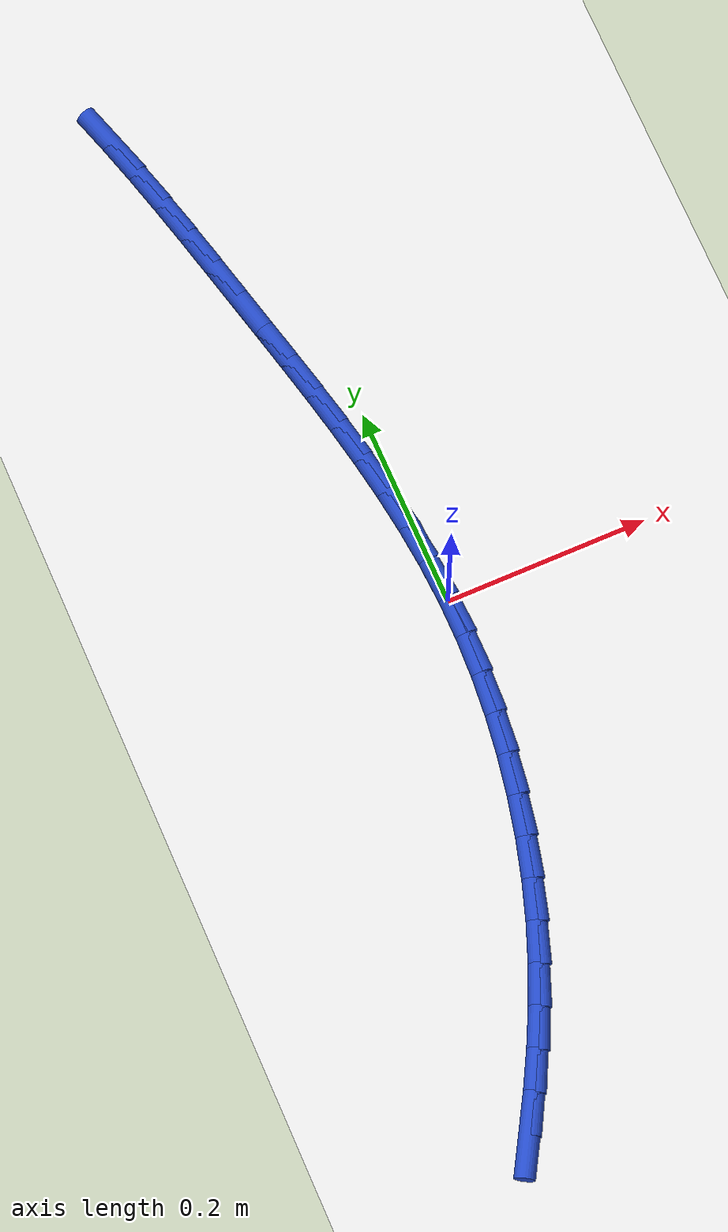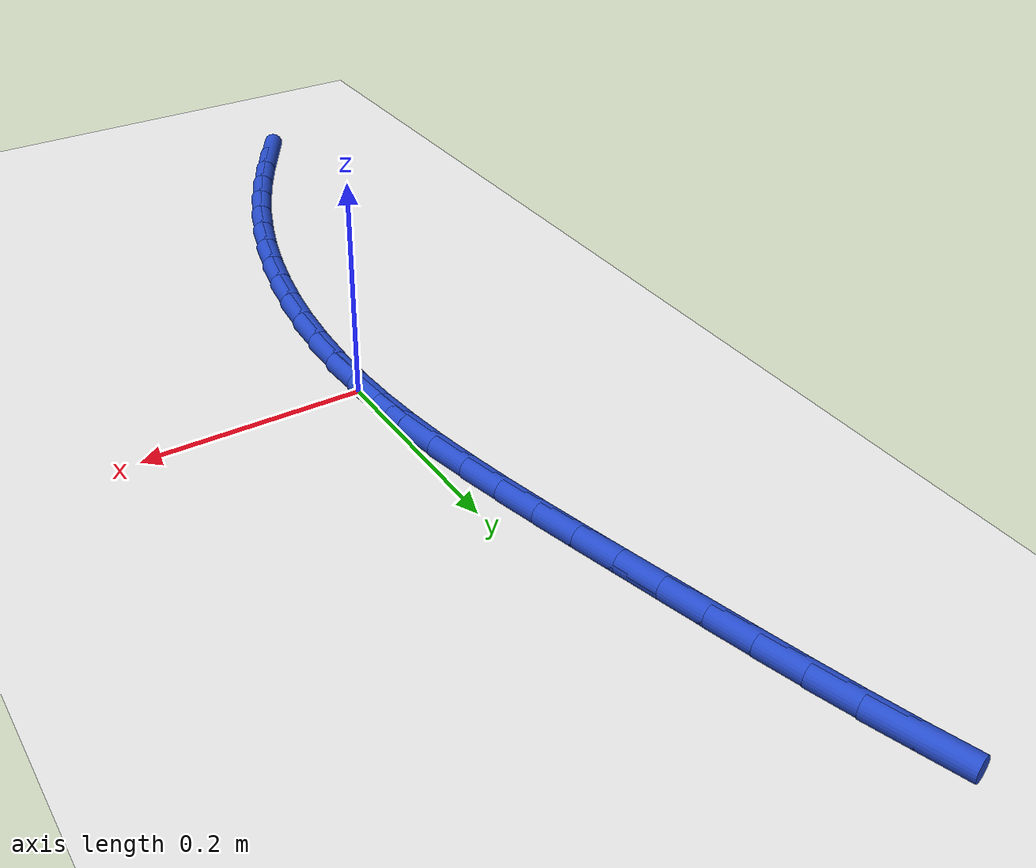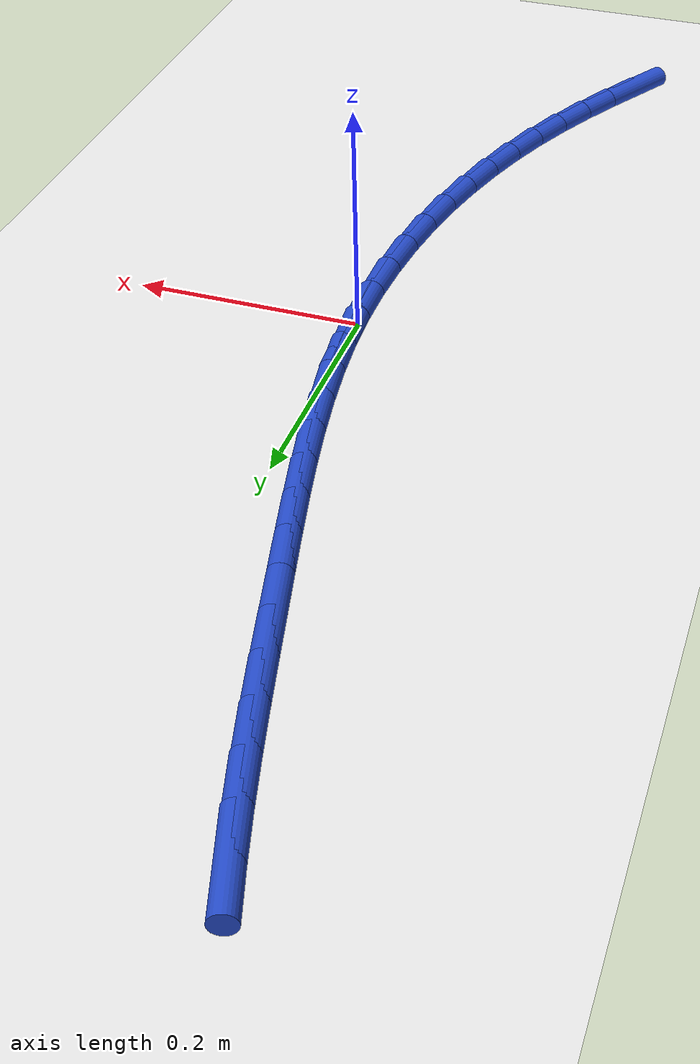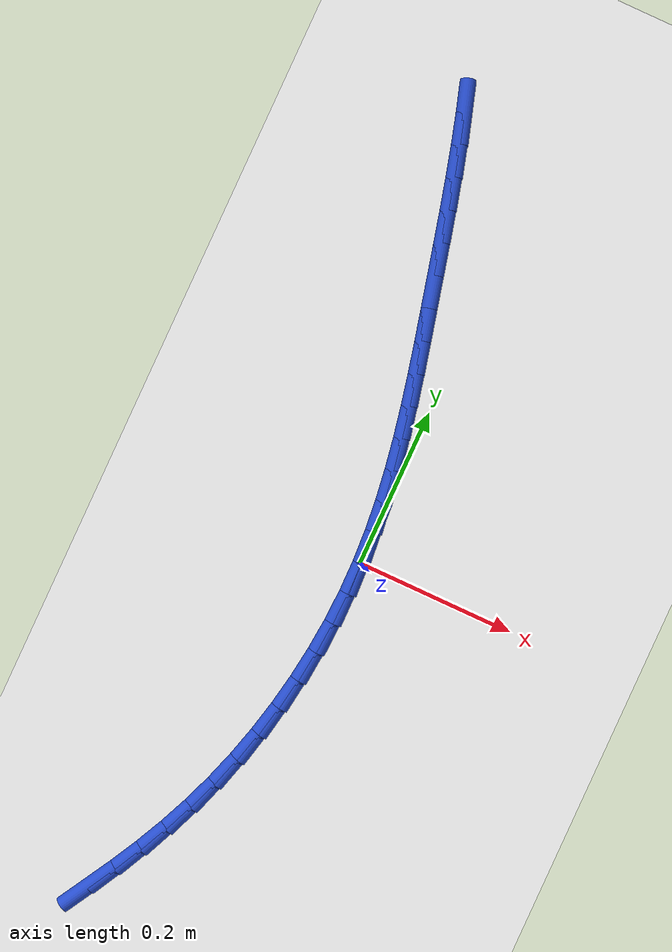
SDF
<sdf version="1.6">
 <world name="default">
  <model name="ground_plane">
   <static>1</static>
   <link name="link">
    <collision name="collision">
     <geometry><plane><normal>0 0 1</normal><size>100 100</size></plane></geometry>
     <surface><friction><ode><mu>100</mu><mu2>50</mu2></ode></friction></surface>
    </collision>
    <visual name="visual">
     <cast_shadows>0</cast_shadows>
     <geometry><plane><normal>0 0 1</normal><size>100 100</size></plane></geometry>
     <material>
      <script><uri>file://media/materials/scripts/gazebo.material</uri><name>Gazebo/WhiteGlow</name></script>
     </material>
    </visual>
   </link>
  </model>
  <model name="line">
   <link name="link_0">
    <pose>-1.734723475976807e-17 4.85722573273506e-17 0.01 0 1.57 -1.515405610957278</pose>
    <collision name="collision">
     <geometry><cylinder><radius>0.01</radius><length>0.08</length></cylinder></geometry>
    </collision>
    <visual name="visual">
     <material>
      <script><name>Gazebo/Blue</name><uri>file://media/materials/scripts/gazebo.material</uri></script>
     </material>
     <geometry><cylinder><radius>0.01</radius><length>0.08</length></cylinder></geometry>
    </visual>
   </link>
   <link name="link_1">
    <pose>-0.0021986254997409475 0.039652429999444225 0.01 0 1.57 -1.4713430195479442</pose>
    <collision name="collision">
     <geometry><cylinder><radius>0.01</radius><length>0.08</length></cylinder></geometry>
    </collision>
    <visual name="visual">
     <material>
      <script><name>Gazebo/Blue</name><uri>file://media/materials/scripts/gazebo.material</uri></script>
     </material>
     <geometry><cylinder><radius>0.01</radius><length>0.08</length></cylinder></geometry>
    </visual>
   </link>
   <link name="link_2">
    <pose>-0.006132129484228086 0.07907320767697612 0.01 0 1.57 -1.433098512157439</pose>
    <collision name="collision">
     <geometry><cylinder><radius>0.01</radius><length>0.08</length></cylinder></geometry>
    </collision>
    <visual name="visual">
     <material>
      <script><name>Gazebo/Blue</name><uri>file://media/materials/scripts/gazebo.material</uri></script>
     </material>
     <geometry><cylinder><radius>0.01</radius><length>0.08</length></cylinder></geometry>
    </visual>
   </link>
   <link name="link_3">
    <pose>-0.011568378197984274 0.11830292878780539 0.01 0 1.57 -1.40083018038586</pose>
    <collision name="collision">
     <geometry><cylinder><radius>0.01</radius><length>0.08</length></cylinder></geometry>
    </collision>
    <visual name="visual">
     <material>
      <script><name>Gazebo/Blue</name><uri>file://media/materials/scripts/gazebo.material</uri></script>
     </material>
     <geometry><cylinder><radius>0.01</radius><length>0.08</length></cylinder></geometry>
    </visual>
   </link>
   <link name="link_4">
    <pose>-0.018275237885532362 0.15738218908714177 0.01 0 1.57 -1.3745987916572162</pose>
    <collision name="collision">
     <geometry><cylinder><radius>0.01</radius><length>0.08</length></cylinder></geometry>
    </collision>
    <visual name="visual">
     <material>
      <script><name>Gazebo/Blue</name><uri>file://media/materials/scripts/gazebo.material</uri></script>
     </material>
     <geometry><cylinder><radius>0.01</radius><length>0.08</length></cylinder></geometry>
    </visual>
   </link>
   <link name="link_5">
    <pose>-0.026020574791395194 0.19635158433019478 0.01 0 1.57 -1.3544016644304093</pose>
    <collision name="collision">
     <geometry><cylinder><radius>0.01</radius><length>0.08</length></cylinder></geometry>
    </collision>
    <visual name="visual">
     <material>
      <script><name>Gazebo/Blue</name><uri>file://media/materials/scripts/gazebo.material</uri></script>
     </material>
     <geometry><cylinder><radius>0.01</radius><length>0.08</length></cylinder></geometry>
    </visual>
   </link>
   <link name="link_6">
    <pose>-0.0345722551600956 0.2352517102721742 0.01 0 1.57 -1.3402013848472585</pose>
    <collision name="collision">
     <geometry><cylinder><radius>0.01</radius><length>0.08</length></cylinder></geometry>
    </collision>
    <visual name="visual">
     <material>
      <script><name>Gazebo/Blue</name><uri>file://media/materials/scripts/gazebo.material</uri></script>
     </material>
     <geometry><cylinder><radius>0.01</radius><length>0.08</length></cylinder></geometry>
    </visual>
   </link>
   <link name="link_7">
    <pose>-0.043698145236156435 0.2741231626682896 0.01 0 1.57 -1.3319478990949911</pose>
    <collision name="collision">
     <geometry><cylinder><radius>0.01</radius><length>0.08</length></cylinder></geometry>
    </collision>
    <visual name="visual">
     <material>
      <script><name>Gazebo/Blue</name><uri>file://media/materials/scripts/gazebo.material</uri></script>
     </material>
     <geometry><cylinder><radius>0.01</radius><length>0.08</length></cylinder></geometry>
    </visual>
   </link>
   <link name="link_8">
    <pose>-0.05316611126410055 0.3130065372737507 0.01 0 1.57 -1.3295651523588803</pose>
    <collision name="collision">
     <geometry><cylinder><radius>0.01</radius><length>0.08</length></cylinder></geometry>
    </collision>
    <visual name="visual">
     <material>
      <script><name>Gazebo/Blue</name><uri>file://media/materials/scripts/gazebo.material</uri></script>
     </material>
     <geometry><cylinder><radius>0.01</radius><length>0.08</length></cylinder></geometry>
    </visual>
   </link>
   <link name="link_9">
    <pose>-0.06274511677212218 0.35194210177137425 0.01 0 1.57 -1.3297239635796314</pose>
    <collision name="collision">
     <geometry><cylinder><radius>0.01</radius><length>0.08</length></cylinder></geometry>
    </collision>
    <visual name="visual">
     <material>
      <script><name>Gazebo/Blue</name><uri>file://media/materials/scripts/gazebo.material</uri></script>
     </material>
     <geometry><cylinder><radius>0.01</radius><length>0.08</length></cylinder></geometry>
    </visual>
   </link>
   <link name="link_10">
    <pose>-0.07233097181801215 0.3909321985147546 0.01 0 1.57 -1.3261030435640409</pose>
    <collision name="collision">
     <geometry><cylinder><radius>0.01</radius><length>0.08</length></cylinder></geometry>
    </collision>
    <visual name="visual">
     <material>
      <script><name>Gazebo/Blue</name><uri>file://media/materials/scripts/gazebo.material</uri></script>
     </material>
     <geometry><cylinder><radius>0.01</radius><length>0.08</length></cylinder></geometry>
    </visual>
   </link>
   <link name="link_11">
    <pose>-0.08206271722990452 0.4299064472763352 0.01 0 1.57 -1.317984143536847</pose>
    <collision name="collision">
     <geometry><cylinder><radius>0.01</radius><length>0.08</length></cylinder></geometry>
    </collision>
    <visual name="visual">
     <material>
      <script><name>Gazebo/Blue</name><uri>file://media/materials/scripts/gazebo.material</uri></script>
     </material>
     <geometry><cylinder><radius>0.01</radius><length>0.08</length></cylinder></geometry>
    </visual>
   </link>
   <link name="link_12">
    <pose>-0.09210690837803741 0.4687862413672521 0.01 0 1.57 -1.305342546793271</pose>
    <collision name="collision">
     <geometry><cylinder><radius>0.01</radius><length>0.08</length></cylinder></geometry>
    </collision>
    <visual name="visual">
     <material>
      <script><name>Gazebo/Blue</name><uri>file://media/materials/scripts/gazebo.material</uri></script>
     </material>
     <geometry><cylinder><radius>0.01</radius><length>0.08</length></cylinder></geometry>
    </visual>
   </link>
   <link name="link_13">
    <pose>-0.10263010063264895 0.5074929740986415 0.01 0 1.57 -1.2881364495051462</pose>
    <collision name="collision">
     <geometry><cylinder><radius>0.01</radius><length>0.08</length></cylinder></geometry>
    </collision>
    <visual name="visual">
     <material>
      <script><name>Gazebo/Blue</name><uri>file://media/materials/scripts/gazebo.material</uri></script>
     </material>
     <geometry><cylinder><radius>0.01</radius><length>0.08</length></cylinder></geometry>
    </visual>
   </link>
   <link name="link_14">
    <pose>-0.1137988493639773 0.5459480387816392 0.01 0 1.57 -1.2663144781094937</pose>
    <collision name="collision">
     <geometry><cylinder><radius>0.01</radius><length>0.08</length></cylinder></geometry>
    </collision>
    <visual name="visual">
     <material>
      <script><name>Gazebo/Blue</name><uri>file://media/materials/scripts/gazebo.material</uri></script>
     </material>
     <geometry><cylinder><radius>0.01</radius><length>0.08</length></cylinder></geometry>
    </visual>
   </link>
   <link name="link_167">
    <pose>-0.13540257906196318 -0.490750331751239 0.01 0 1.57 1.0457390463107645</pose>
    <collision name="collision">
     <geometry><cylinder><radius>0.01</radius><length>0.08</length></cylinder></geometry>
    </collision>
    <visual name="visual">
     <material>
      <script><name>Gazebo/Blue</name><uri>file://media/materials/scripts/gazebo.material</uri></script>
     </material>
     <geometry><cylinder><radius>0.01</radius><length>0.08</length></cylinder></geometry>
    </visual>
   </link>
   <link name="link_168">
    <pose>-0.11568981253103953 -0.45672153351503425 0.01 0 1.57 1.0768004751168037</pose>
    <collision name="collision">
     <geometry><cylinder><radius>0.01</radius><length>0.08</length></cylinder></geometry>
    </collision>
    <visual name="visual">
     <material>
      <script><name>Gazebo/Blue</name><uri>file://media/materials/scripts/gazebo.material</uri></script>
     </material>
     <geometry><cylinder><radius>0.01</radius><length>0.08</length></cylinder></geometry>
    </visual>
   </link>
   <link name="link_169">
    <pose>-0.09712748638029682 -0.4222531410090164 0.01 0 1.57 1.1136666377398898</pose>
    <collision name="collision">
     <geometry><cylinder><radius>0.01</radius><length>0.08</length></cylinder></geometry>
    </collision>
    <visual name="visual">
     <material>
      <script><name>Gazebo/Blue</name><uri>file://media/materials/scripts/gazebo.material</uri></script>
     </material>
     <geometry><cylinder><radius>0.01</radius><length>0.08</length></cylinder></geometry>
    </visual>
   </link>
   <link name="link_170">
    <pose>-0.07987134824319025 -0.38717105812318087 0.01 0 1.57 1.156021816832876</pose>
    <collision name="collision">
     <geometry><cylinder><radius>0.01</radius><length>0.08</length></cylinder></geometry>
    </collision>
    <visual name="visual">
     <material>
      <script><name>Gazebo/Blue</name><uri>file://media/materials/scripts/gazebo.material</uri></script>
     </material>
     <geometry><cylinder><radius>0.01</radius><length>0.08</length></cylinder></geometry>
    </visual>
   </link>
   <link name="link_171">
    <pose>-0.06407714575317615 -0.3513011887475252 0.01 0 1.57 1.2029773549209302</pose>
    <collision name="collision">
     <geometry><cylinder><radius>0.01</radius><length>0.08</length></cylinder></geometry>
    </collision>
    <visual name="visual">
     <material>
      <script><name>Gazebo/Blue</name><uri>file://media/materials/scripts/gazebo.material</uri></script>
     </material>
     <geometry><cylinder><radius>0.01</radius><length>0.08</length></cylinder></geometry>
    </visual>
   </link>
   <link name="link_172">
    <pose>-0.04989232169963704 -0.3144915403809179 0.01 0 1.57 1.2506519487384984</pose>
    <collision name="collision">
     <geometry><cylinder><radius>0.01</radius><length>0.08</length></cylinder></geometry>
    </collision>
    <visual name="visual">
     <material>
      <script><name>Gazebo/Blue</name><uri>file://media/materials/scripts/gazebo.material</uri></script>
     </material>
     <geometry><cylinder><radius>0.01</radius><length>0.08</length></cylinder></geometry>
    </visual>
   </link>
   <link name="link_173">
    <pose>-0.037390903380840605 -0.2767855182065956 0.01 0 1.57 1.297443162978455</pose>
    <collision name="collision">
     <geometry><cylinder><radius>0.01</radius><length>0.08</length></cylinder></geometry>
    </collision>
    <visual name="visual">
     <material>
      <script><name>Gazebo/Blue</name><uri>file://media/materials/scripts/gazebo.material</uri></script>
     </material>
     <geometry><cylinder><radius>0.01</radius><length>0.08</length></cylinder></geometry>
    </visual>
   </link>
   <link name="link_174">
    <pose>-0.02660863140849155 -0.2383284286521076 0.01 0 1.57 1.343671422675699</pose>
    <collision name="collision">
     <geometry><cylinder><radius>0.01</radius><length>0.08</length></cylinder></geometry>
    </collision>
    <visual name="visual">
     <material>
      <script><name>Gazebo/Blue</name><uri>file://media/materials/scripts/gazebo.material</uri></script>
     </material>
     <geometry><cylinder><radius>0.01</radius><length>0.08</length></cylinder></geometry>
    </visual>
   </link>
   <link name="link_175">
    <pose>-0.017580915195986434 -0.1992664596399235 0.01 0 1.57 1.3896651411430871</pose>
    <collision name="collision">
     <geometry><cylinder><radius>0.01</radius><length>0.08</length></cylinder></geometry>
    </collision>
    <visual name="visual">
     <material>
      <script><name>Gazebo/Blue</name><uri>file://media/materials/scripts/gazebo.material</uri></script>
     </material>
     <geometry><cylinder><radius>0.01</radius><length>0.08</length></cylinder></geometry>
    </visual>
   </link>
   <link name="link_176">
    <pose>-0.010343164156721712 -0.15974579909251227 0.01 0 1.57 1.4357472442332515</pose>
    <collision name="collision">
     <geometry><cylinder><radius>0.01</radius><length>0.08</length></cylinder></geometry>
    </collision>
    <visual name="visual">
     <material>
      <script><name>Gazebo/Blue</name><uri>file://media/materials/scripts/gazebo.material</uri></script>
     </material>
     <geometry><cylinder><radius>0.01</radius><length>0.08</length></cylinder></geometry>
    </visual>
   </link>
   <link name="link_177">
    <pose>-0.004930787704094244 -0.1199126349323451 0.01 0 1.57 1.4822376010788108</pose>
    <collision name="collision">
     <geometry><cylinder><radius>0.01</radius><length>0.08</length></cylinder></geometry>
    </collision>
    <visual name="visual">
     <material>
      <script><name>Gazebo/Blue</name><uri>file://media/materials/scripts/gazebo.material</uri></script>
     </material>
     <geometry><cylinder><radius>0.01</radius><length>0.08</length></cylinder></geometry>
    </visual>
   </link>
   <link name="link_178">
    <pose>-0.0013791952515004235 -0.07991315508189084 0.01 0 1.57 1.5294551954017264</pose>
    <collision name="collision">
     <geometry><cylinder><radius>0.01</radius><length>0.08</length></cylinder></geometry>
    </collision>
    <visual name="visual">
     <material>
      <script><name>Gazebo/Blue</name><uri>file://media/materials/scripts/gazebo.material</uri></script>
     </material>
     <geometry><cylinder><radius>0.01</radius><length>0.08</length></cylinder></geometry>
    </visual>
   </link>
   <link name="link_179">
    <pose>0.00027620378766317257 -0.03989354746361921 0.01 0 1.57 -1.5638729170692143</pose>
    <collision name="collision">
     <geometry><cylinder><radius>0.01</radius><length>0.08</length></cylinder></geometry>
    </collision>
    <visual name="visual">
     <material>
      <script><name>Gazebo/Blue</name><uri>file://media/materials/scripts/gazebo.material</uri></script>
     </material>
     <geometry><cylinder><radius>0.01</radius><length>0.08</length></cylinder></geometry>
    </visual>
   </link>
   <link name="link_180">
    <pose>-1.734723475976807e-17 2.0122792321330962e-16 0.01 0 1.57 -1.5142402863273456</pose>
    <collision name="collision">
     <geometry><cylinder><radius>0.01</radius><length>0.08</length></cylinder></geometry>
    </collision>
    <visual name="visual">
     <material>
      <script><name>Gazebo/Blue</name><uri>file://media/materials/scripts/gazebo.material</uri></script>
     </material>
     <geometry><cylinder><radius>0.01</radius><length>0.08</length></cylinder></geometry>
    </visual>
   </link>
   <link name="link_181">
    <pose>-0.0022432160278865586 0.03962129938649768 0.01 0 1.57 -1.5142402863273459</pose>
    <collision name="collision">
     <geometry><cylinder><radius>0.01</radius><length>0.08</length></cylinder></geometry>
    </collision>
    <visual name="visual">
     <material>
      <script><name>Gazebo/Blue</name><uri>file://media/materials/scripts/gazebo.material</uri></script>
     </material>
     <geometry><cylinder><radius>0.01</radius><length>0.08</length></cylinder></geometry>
    </visual>
   </link>
  </model>
 </world>
</sdf>
